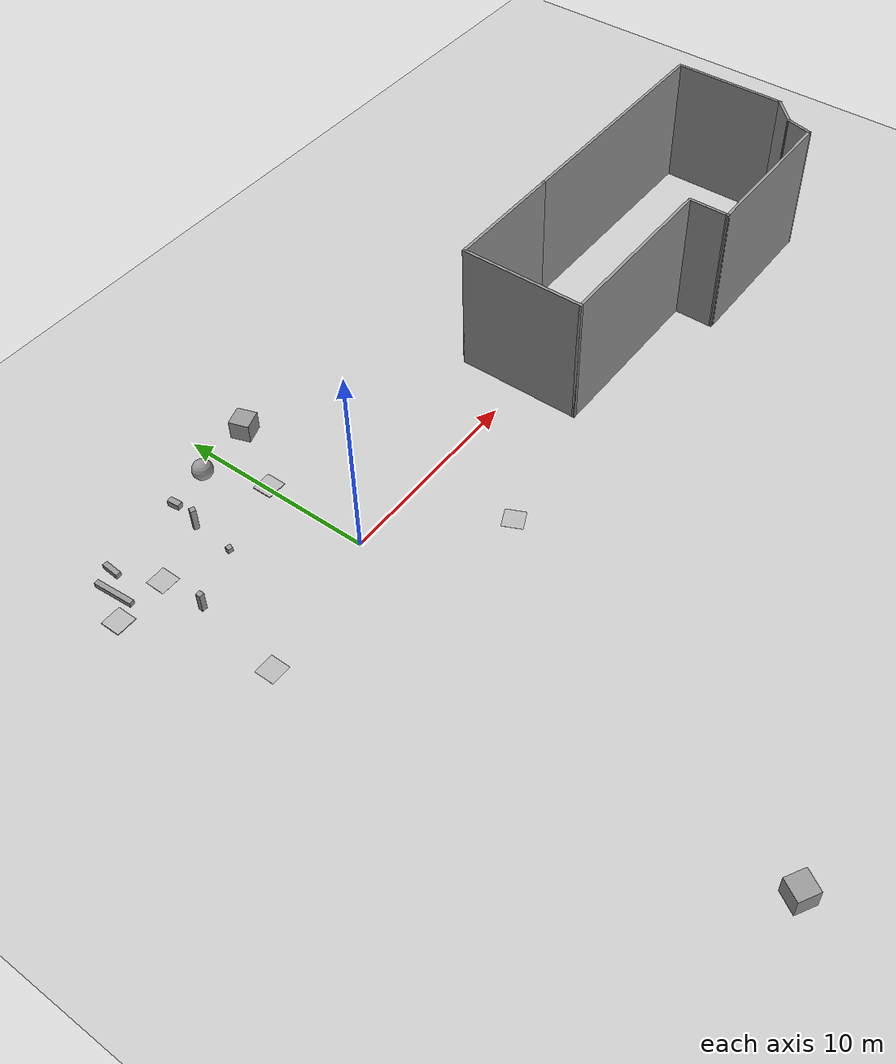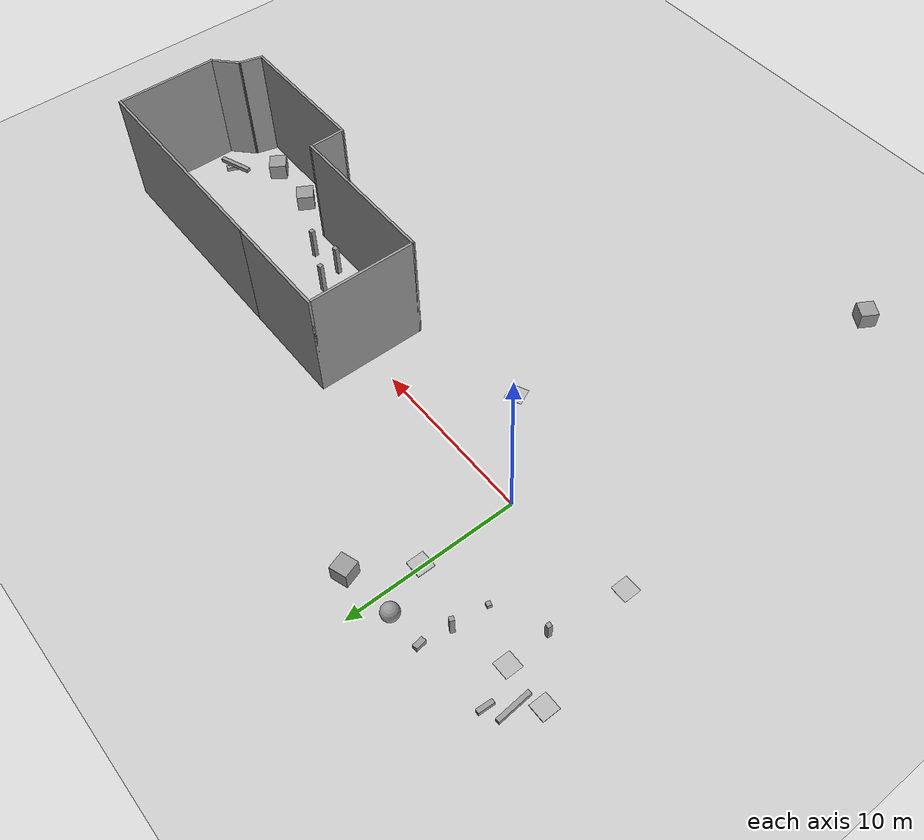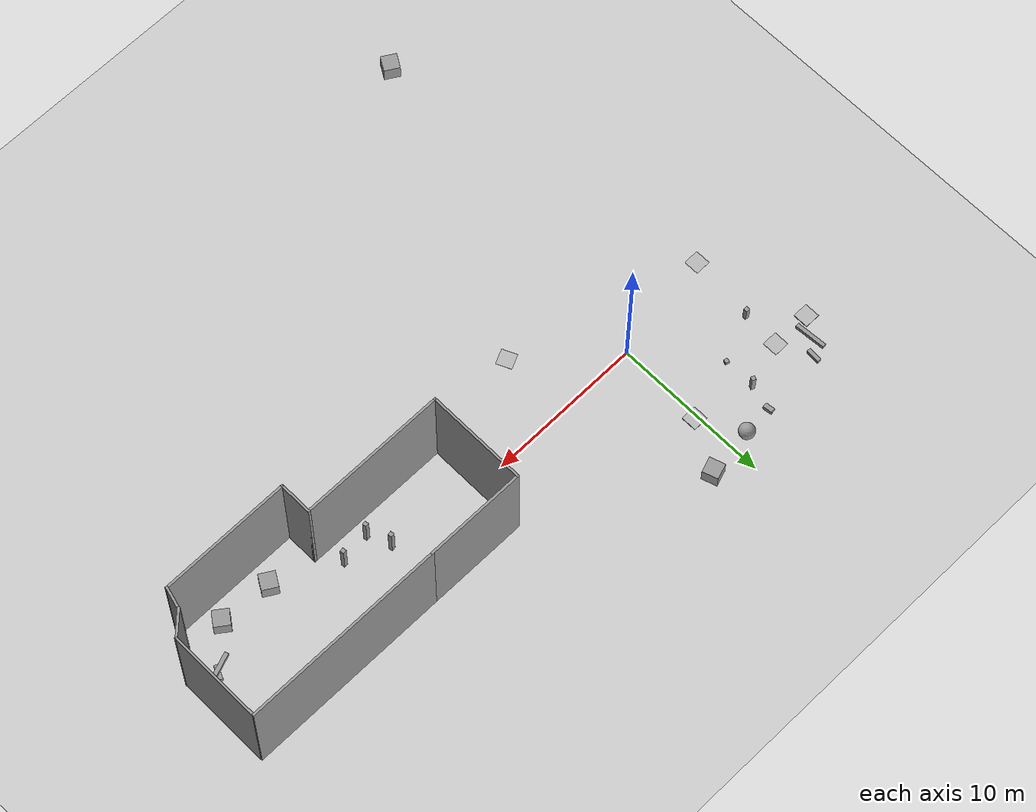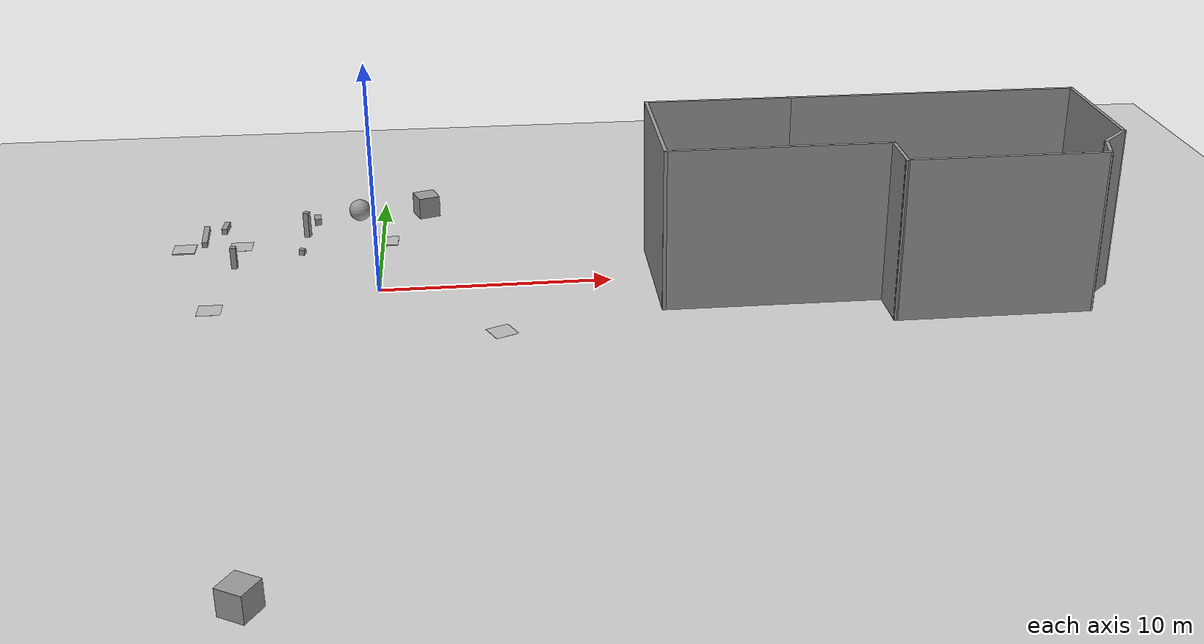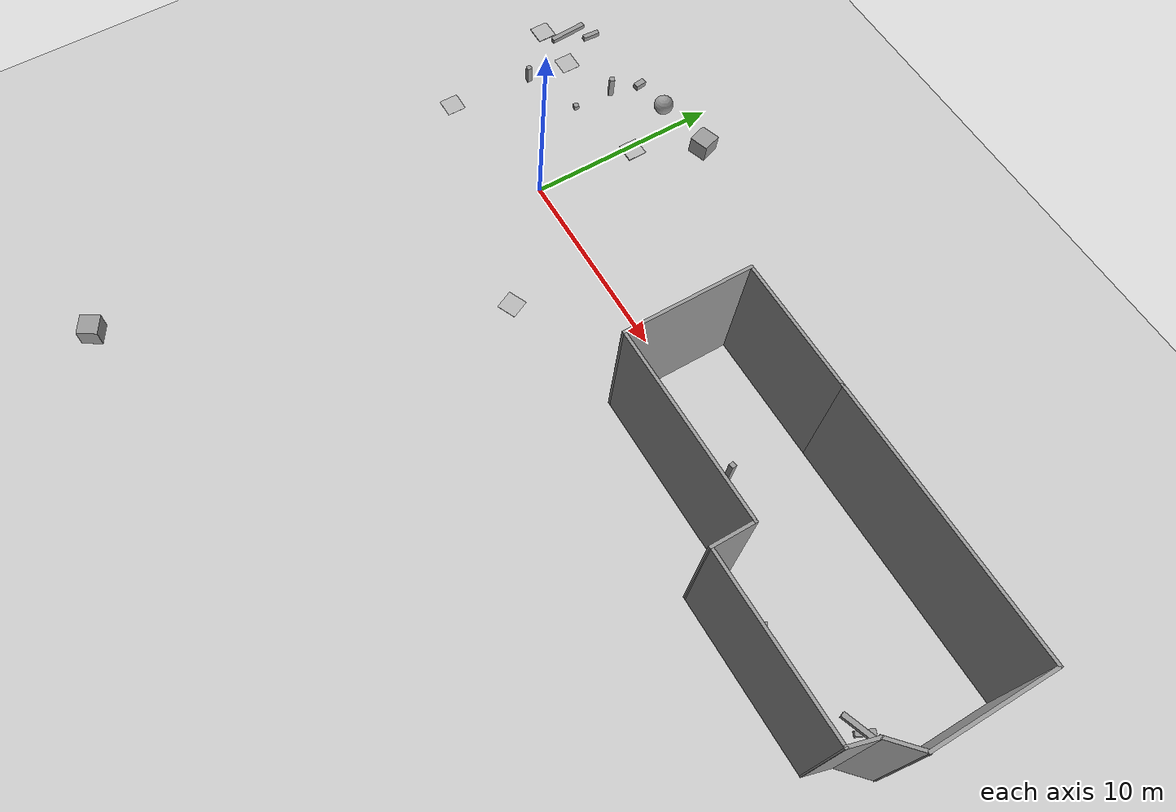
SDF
<sdf version="1.7">
 <world name="default">
  <light name="sun" type="directional">
   <pose>0 0 10 0 -0 0</pose>
   <diffuse>0.8 0.8 0.8 1</diffuse>
   <specular>0.2 0.2 0.2 1</specular>
   <attenuation>
    <range>1000</range>
    <constant>0.9</constant>
    <linear>0.01</linear>
    <quadratic>0.001</quadratic>
   </attenuation>
   <direction>-0.5 0.1 -0.9</direction>
   <spot><inner_angle>0</inner_angle><outer_angle>0</outer_angle><falloff>0</falloff></spot>
  </light>
  <model name="ground_plane">
   <static>1</static>
   <link name="link">
    <collision name="collision">
     <geometry><plane><normal>0 0 1</normal><size>100 100</size></plane></geometry>
     <surface><friction><ode><mu>100</mu><mu2>50</mu2></ode></friction></surface>
    </collision>
    <visual name="visual">
     <cast_shadows>0</cast_shadows>
     <geometry><plane><normal>0 0 1</normal><size>100 100</size></plane></geometry>
     <material>
      <script><uri>file://media/materials/scripts/gazebo.material</uri><name>Gazebo/Grey</name></script>
     </material>
    </visual>
   </link>
  </model>
  <gravity>0 0 -9.8</gravity>
  <magnetic_field>6e-06 2.3e-05 -4.2e-05</magnetic_field>
  <atmosphere type="adiabatic"/>
  <physics name="default_physics" default="0" type="ode">
   <max_step_size>0.001</max_step_size>
   <real_time_factor>1</real_time_factor>
   <real_time_update_rate>1000</real_time_update_rate>
  </physics>
  <scene><ambient>0.4 0.4 0.4 1</ambient><background>0.7 0.7 0.7 1</background><shadows>1</shadows></scene>
  <spherical_coordinates>
   <surface_model>EARTH_WGS84</surface_model>
   <latitude_deg>0</latitude_deg>
   <longitude_deg>0</longitude_deg>
   <elevation>0</elevation>
   <heading_deg>0</heading_deg>
  </spherical_coordinates>
  <model name="h_1">
   <link name="link">
    <pose>0 0 0.115 0 -0 0</pose>
    <inertial>
     <mass>1000</mass>
     <inertia><ixx>1000</ixx><ixy>0</ixy><ixz>0</ixz><iyy>1000</iyy><iyz>0</iyz><izz>1000</izz></inertia>
    </inertial>
    <collision name="collision">
     <geometry><box><size>0.496 0.496 0.01</size></box></geometry>
     <surface>
      <contact>
       <poissons_ratio>0.347</poissons_ratio>
       <elastic_modulus>8.8e+09</elastic_modulus>
       <ode><kp>100000</kp><kd>100</kd><max_vel>100</max_vel><min_depth>0.001</min_depth></ode>
      </contact>
      <friction>
       <torsional>
        <coefficient>1</coefficient>
        <use_patch_radius>0</use_patch_radius>
        <surface_radius>0.01</surface_radius>
       </torsional>
      </friction>
     </surface>
    </collision>
    <visual name="visual">
     <geometry><box><size>1 1 0.05</size></box></geometry>
     <material>
      <script>
       <uri>model://H/materials/scripts</uri>
       <uri>model://H/materials/textures</uri>
       <name>Mark/Diffuse2</name>
      </script>
     </material>
    </visual>
   </link>
   <pose>-8.95845 5.4829 -0.135259 0 -0 0</pose>
  </model>
  <model name="h_1_clone">
   <link name="link">
    <pose>0 0 0.115 0 -0 0</pose>
    <inertial>
     <mass>1000</mass>
     <inertia><ixx>1000</ixx><ixy>0</ixy><ixz>0</ixz><iyy>1000</iyy><iyz>0</iyz><izz>1000</izz></inertia>
    </inertial>
    <collision name="collision">
     <geometry><box><size>0.496 0.496 0.01</size></box></geometry>
     <surface>
      <contact>
       <poissons_ratio>0.347</poissons_ratio>
       <elastic_modulus>8.8e+09</elastic_modulus>
       <ode><kp>100000</kp><kd>100</kd><max_vel>100</max_vel><min_depth>0.001</min_depth></ode>
      </contact>
      <friction>
       <torsional>
        <coefficient>1</coefficient>
        <use_patch_radius>0</use_patch_radius>
        <surface_radius>0.01</surface_radius>
       </torsional>
      </friction>
     </surface>
    </collision>
    <visual name="visual">
     <geometry><box><size>1 1 0.05</size></box></geometry>
     <material>
      <script>
       <uri>model://H/materials/scripts</uri>
       <uri>model://H/materials/textures</uri>
       <name>Mark/Diffuse2</name>
      </script>
     </material>
    </visual>
   </link>
   <pose>0.183791 5.48947 -0.135259 0 -0 0.001493</pose>
  </model>
  <model name="zhuangjiache_0">
   <link name="link">
    <pose>0 0 0.115 0 -0 0</pose>
    <inertial>
     <mass>3.39</mass>
     <inertia><ixx>0.58</ixx><ixy>0</ixy><ixz>0</ixz><iyy>0.58</iyy><iyz>0</iyz><izz>0.19</izz></inertia>
    </inertial>
    <collision name="collision"><geometry><box><size>0.496 0.496 0.01</size></box></geometry></collision>
    <visual name="visual">
     <geometry><box><size>1 1 0.005</size></box></geometry>
     <material>
      <script>
       <uri>model://zhuangjiache/materials/scripts</uri>
       <uri>model://zhuangjiache/materials/textures</uri>
       <name>Mark/Diffuse6</name>
      </script>
     </material>
    </visual>
   </link>
   <pose>-6.97129 -1.24026 -0.11 0 -0 0.00193</pose>
  </model>
  <model name="zhangpeng_0">
   <link name="link">
    <pose>0 0 0.115 0 -0 0</pose>
    <inertial>
     <mass>3.39</mass>
     <inertia><ixx>0.58</ixx><ixy>0</ixy><ixz>0</ixz><iyy>0.58</iyy><iyz>0</iyz><izz>0.19</izz></inertia>
    </inertial>
    <collision name="collision"><geometry><box><size>0.496 0.496 0.005</size></box></geometry></collision>
    <visual name="visual">
     <geometry><box><size>1 1 0.005</size></box></geometry>
     <material>
      <script>
       <uri>model://zhangpeng/materials/scripts</uri>
       <uri>model://zhangpeng/materials/textures</uri>
       <name>Mark/Diffuse5</name>
      </script>
     </material>
    </visual>
   </link>
   <pose>5.10524 -4.53401 0.1175 3.14159 0 -1.1365</pose>
  </model>
  <model name="tanke_0">
   <link name="link">
    <pose>0 0 0.115 0 -0 0</pose>
    <inertial>
     <mass>3.39</mass>
     <inertia><ixx>0.58</ixx><ixy>0</ixy><ixz>0</ixz><iyy>0.58</iyy><iyz>0</iyz><izz>0.19</izz></inertia>
    </inertial>
    <collision name="collision"><geometry><box><size>0.496 0.496 0.005</size></box></geometry></collision>
    <visual name="visual">
     <geometry><box><size>1 1 0.005</size></box></geometry>
     <material>
      <script>
       <uri>model://tanke/materials/scripts</uri>
       <uri>model://tanke/materials/textures</uri>
       <name>Mark/Diffuse4</name>
      </script>
     </material>
    </visual>
   </link>
   <pose>-6.41052 5.49151 -0.1125 0 -0 -0.000981</pose>
  </model>
  <model name="unit_box_1">
   <link name="link">
    <inertial>
     <mass>1</mass>
     <inertia>
      <ixx>0.166667</ixx>
      <ixy>0</ixy>
      <ixz>0</ixz>
      <iyy>0.166667</iyy>
      <iyz>0</iyz>
      <izz>0.166667</izz>
     </inertia>
    </inertial>
    <pose>0.033703 0.185129 -0 0 -0 0</pose>
    <visual name="visual">
     <geometry><box><size>0.25 0.25 1</size></box></geometry>
     <material>
      <lighting>1</lighting>
      <script><uri>file://media/materials/scripts/gazebo.material</uri><name>Gazebo/Grey</name></script>
      <shader type="pixel"><normal_map>__default__</normal_map></shader>
      <ambient>0.3 0.3 0.3 1</ambient>
      <diffuse>0.7 0.7 0.7 1</diffuse>
      <specular>0.01 0.01 0.01 1</specular>
      <emissive>0 0 0 1</emissive>
     </material>
    </visual>
    <collision name="collision">
     <geometry><box><size>0.25 0.25 1</size></box></geometry>
     <surface>
      <friction>
       <ode><mu>1</mu><mu2>1</mu2><fdir1>0 0 0</fdir1><slip1>0</slip1><slip2>0</slip2></ode>
       <torsional>
        <coefficient>1</coefficient>
        <patch_radius>0</patch_radius>
        <surface_radius>0</surface_radius>
        <use_patch_radius>1</use_patch_radius>
        <ode><slip>0</slip></ode>
       </torsional>
      </friction>
      <bounce><restitution_coefficient>0</restitution_coefficient><threshold>1e+06</threshold></bounce>
      <contact>
       <collide_without_contact>0</collide_without_contact>
       <collide_without_contact_bitmask>1</collide_without_contact_bitmask>
       <collide_bitmask>1</collide_bitmask>
       <ode>
        <soft_cfm>0</soft_cfm>
        <soft_erp>0.2</soft_erp>
        <kp>1e+13</kp>
        <kd>1</kd>
        <max_vel>0.01</max_vel>
        <min_depth>0</min_depth>
       </ode>
       <bullet>
        <split_impulse>1</split_impulse>
        <split_impulse_penetration_threshold>-0.01</split_impulse_penetration_threshold>
        <soft_cfm>0</soft_cfm>
        <soft_erp>0.2</soft_erp>
        <kp>1e+13</kp>
        <kd>1</kd>
       </bullet>
      </contact>
     </surface>
    </collision>
   </link>
   <static>0</static>
   <pose>-6.48227 2.93704 0.499999 1e-06 -2e-06 -0.065841</pose>
  </model>
  <model name="unit_box_0.6">
   <link name="link">
    <inertial>
     <mass>1</mass>
     <inertia>
      <ixx>0.166667</ixx>
      <ixy>0</ixy>
      <ixz>0</ixz>
      <iyy>0.166667</iyy>
      <iyz>0</iyz>
      <izz>0.166667</izz>
     </inertia>
    </inertial>
    <pose>0.033703 0.185129 -0 0 -0 0</pose>
    <visual name="visual">
     <geometry><box><size>0.3 0.3 0.6</size></box></geometry>
     <material>
      <lighting>1</lighting>
      <script><uri>file://media/materials/scripts/gazebo.material</uri><name>Gazebo/Grey</name></script>
      <shader type="pixel"><normal_map>__default__</normal_map></shader>
      <ambient>0.3 0.3 0.3 1</ambient>
      <diffuse>0.7 0.7 0.7 1</diffuse>
      <specular>0.01 0.01 0.01 1</specular>
      <emissive>0 0 0 1</emissive>
     </material>
    </visual>
    <collision name="collision">
     <geometry><box><size>0.3 0.3 0.6</size></box></geometry>
     <surface>
      <friction>
       <ode><mu>1</mu><mu2>1</mu2><fdir1>0 0 0</fdir1><slip1>0</slip1><slip2>0</slip2></ode>
       <torsional>
        <coefficient>1</coefficient>
        <patch_radius>0</patch_radius>
        <surface_radius>0</surface_radius>
        <use_patch_radius>1</use_patch_radius>
        <ode><slip>0</slip></ode>
       </torsional>
      </friction>
      <bounce><restitution_coefficient>0</restitution_coefficient><threshold>1e+06</threshold></bounce>
      <contact>
       <collide_without_contact>0</collide_without_contact>
       <collide_without_contact_bitmask>1</collide_without_contact_bitmask>
       <collide_bitmask>1</collide_bitmask>
       <ode>
        <soft_cfm>0</soft_cfm>
        <soft_erp>0.2</soft_erp>
        <kp>1e+13</kp>
        <kd>1</kd>
        <max_vel>0.01</max_vel>
        <min_depth>0</min_depth>
       </ode>
       <bullet>
        <split_impulse>1</split_impulse>
        <split_impulse_penetration_threshold>-0.01</split_impulse_penetration_threshold>
        <soft_cfm>0</soft_cfm>
        <soft_erp>0.2</soft_erp>
        <kp>1e+13</kp>
        <kd>1</kd>
       </bullet>
      </contact>
     </surface>
    </collision>
   </link>
   <static>0</static>
   <pose>-3.32438 8.01434 0.183703 -1.6882 1.57079 3.14159</pose>
  </model>
  <model name="unit_box_0.25">
   <link name="link">
    <inertial>
     <mass>1</mass>
     <inertia>
      <ixx>0.166667</ixx>
      <ixy>0</ixy>
      <ixz>0</ixz>
      <iyy>0.166667</iyy>
      <iyz>0</iyz>
      <izz>0.166667</izz>
     </inertia>
    </inertial>
    <pose>0.033703 0.185129 -0 0 -0 0</pose>
    <visual name="visual">
     <geometry><box><size>0.25 0.25 0.25</size></box></geometry>
     <material>
      <lighting>1</lighting>
      <script><uri>file://media/materials/scripts/gazebo.material</uri><name>Gazebo/Grey</name></script>
      <shader type="pixel"><normal_map>__default__</normal_map></shader>
      <ambient>0.3 0.3 0.3 1</ambient>
      <diffuse>0.7 0.7 0.7 1</diffuse>
      <specular>0.01 0.01 0.01 1</specular>
      <emissive>0 0 0 1</emissive>
     </material>
    </visual>
    <collision name="collision">
     <geometry><box><size>0.25 0.25 0.25</size></box></geometry>
     <surface>
      <friction>
       <ode><mu>1</mu><mu2>1</mu2><fdir1>0 0 0</fdir1><slip1>0</slip1><slip2>0</slip2></ode>
       <torsional>
        <coefficient>1</coefficient>
        <patch_radius>0</patch_radius>
        <surface_radius>0</surface_radius>
        <use_patch_radius>1</use_patch_radius>
        <ode><slip>0</slip></ode>
       </torsional>
      </friction>
      <bounce><restitution_coefficient>0</restitution_coefficient><threshold>1e+06</threshold></bounce>
      <contact>
       <collide_without_contact>0</collide_without_contact>
       <collide_without_contact_bitmask>1</collide_without_contact_bitmask>
       <collide_bitmask>1</collide_bitmask>
       <ode>
        <soft_cfm>0</soft_cfm>
        <soft_erp>0.2</soft_erp>
        <kp>1e+13</kp>
        <kd>1</kd>
        <max_vel>0.01</max_vel>
        <min_depth>0</min_depth>
       </ode>
       <bullet>
        <split_impulse>1</split_impulse>
        <split_impulse_penetration_threshold>-0.01</split_impulse_penetration_threshold>
        <soft_cfm>0</soft_cfm>
        <soft_erp>0.2</soft_erp>
        <kp>1e+13</kp>
        <kd>1</kd>
       </bullet>
      </contact>
     </surface>
    </collision>
   </link>
   <static>0</static>
   <pose>-3.65186 4.16416 0.125 0 0 -0.235881</pose>
  </model>
  <model name="unit_box_2">
   <link name="link">
    <inertial>
     <mass>1</mass>
     <inertia>
      <ixx>0.166667</ixx>
      <ixy>0</ixy>
      <ixz>0</ixz>
      <iyy>0.166667</iyy>
      <iyz>0</iyz>
      <izz>0.166667</izz>
     </inertia>
    </inertial>
    <pose>0.033703 0.185129 -0 0 -0 0</pose>
    <visual name="visual">
     <geometry><box><size>0.25 0.25 2</size></box></geometry>
     <material>
      <lighting>1</lighting>
      <script><uri>file://media/materials/scripts/gazebo.material</uri><name>Gazebo/Grey</name></script>
      <shader type="pixel"><normal_map>__default__</normal_map></shader>
      <ambient>0.3 0.3 0.3 1</ambient>
      <diffuse>0.7 0.7 0.7 1</diffuse>
      <specular>0.01 0.01 0.01 1</specular>
      <emissive>0 0 0 1</emissive>
     </material>
    </visual>
    <collision name="collision">
     <geometry><box><size>0.25 0.25 2</size></box></geometry>
     <surface>
      <friction>
       <ode><mu>1</mu><mu2>1</mu2><fdir1>0 0 0</fdir1><slip1>0</slip1><slip2>0</slip2></ode>
       <torsional>
        <coefficient>1</coefficient>
        <patch_radius>0</patch_radius>
        <surface_radius>0</surface_radius>
        <use_patch_radius>1</use_patch_radius>
        <ode><slip>0</slip></ode>
       </torsional>
      </friction>
      <bounce><restitution_coefficient>0</restitution_coefficient><threshold>1e+06</threshold></bounce>
      <contact>
       <collide_without_contact>0</collide_without_contact>
       <collide_without_contact_bitmask>1</collide_without_contact_bitmask>
       <collide_bitmask>1</collide_bitmask>
       <ode>
        <soft_cfm>0</soft_cfm>
        <soft_erp>0.2</soft_erp>
        <kp>1e+13</kp>
        <kd>1</kd>
        <max_vel>0.01</max_vel>
        <min_depth>0</min_depth>
       </ode>
       <bullet>
        <split_impulse>1</split_impulse>
        <split_impulse_penetration_threshold>-0.01</split_impulse_penetration_threshold>
        <soft_cfm>0</soft_cfm>
        <soft_erp>0.2</soft_erp>
        <kp>1e+13</kp>
        <kd>1</kd>
       </bullet>
      </contact>
     </surface>
    </collision>
   </link>
   <static>0</static>
   <pose>-7.9508 6.58425 0.158643 3.1387 1.57074 -1.50507</pose>
  </model>
  <model name="unit_box_0.9">
   <link name="link">
    <inertial>
     <mass>1</mass>
     <inertia>
      <ixx>0.166667</ixx>
      <ixy>0</ixy>
      <ixz>0</ixz>
      <iyy>0.166667</iyy>
      <iyz>0</iyz>
      <izz>0.166667</izz>
     </inertia>
    </inertial>
    <pose>0.033703 0.185129 -0 0 -0 0</pose>
    <visual name="visual">
     <geometry><box><size>0.25 0.25 0.9</size></box></geometry>
     <material>
      <lighting>1</lighting>
      <script><uri>file://media/materials/scripts/gazebo.material</uri><name>Gazebo/Grey</name></script>
      <shader type="pixel"><normal_map>__default__</normal_map></shader>
      <ambient>0.3 0.3 0.3 1</ambient>
      <diffuse>0.7 0.7 0.7 1</diffuse>
      <specular>0.01 0.01 0.01 1</specular>
      <emissive>0 0 0 1</emissive>
     </material>
    </visual>
    <collision name="collision">
     <geometry><box><size>0.25 0.25 0.9</size></box></geometry>
     <surface>
      <friction>
       <ode><mu>1</mu><mu2>1</mu2><fdir1>0 0 0</fdir1><slip1>0</slip1><slip2>0</slip2></ode>
       <torsional>
        <coefficient>1</coefficient>
        <patch_radius>0</patch_radius>
        <surface_radius>0</surface_radius>
        <use_patch_radius>1</use_patch_radius>
        <ode><slip>0</slip></ode>
       </torsional>
      </friction>
      <bounce><restitution_coefficient>0</restitution_coefficient><threshold>1e+06</threshold></bounce>
      <contact>
       <collide_without_contact>0</collide_without_contact>
       <collide_without_contact_bitmask>1</collide_without_contact_bitmask>
       <collide_bitmask>1</collide_bitmask>
       <ode>
        <soft_cfm>0</soft_cfm>
        <soft_erp>0.2</soft_erp>
        <kp>1e+13</kp>
        <kd>1</kd>
        <max_vel>0.01</max_vel>
        <min_depth>0</min_depth>
       </ode>
       <bullet>
        <split_impulse>1</split_impulse>
        <split_impulse_penetration_threshold>-0.01</split_impulse_penetration_threshold>
        <soft_cfm>0</soft_cfm>
        <soft_erp>0.2</soft_erp>
        <kp>1e+13</kp>
        <kd>1</kd>
       </bullet>
      </contact>
     </surface>
    </collision>
   </link>
   <static>0</static>
   <pose>-7.38119 7.56237 0.310129 -1.5708 -0 -0.065155</pose>
  </model>
  <model name="unit_box_1.2">
   <link name="link">
    <inertial>
     <mass>1</mass>
     <inertia>
      <ixx>0.166667</ixx>
      <ixy>0</ixy>
      <ixz>0</ixz>
      <iyy>0.166667</iyy>
      <iyz>0</iyz>
      <izz>0.166667</izz>
     </inertia>
    </inertial>
    <pose>0.033703 0.185129 -0 0 -0 0</pose>
    <visual name="visual">
     <geometry><box><size>0.25 0.25 1.2</size></box></geometry>
     <material>
      <lighting>1</lighting>
      <script><uri>file://media/materials/scripts/gazebo.material</uri><name>Gazebo/Grey</name></script>
      <shader type="pixel"><normal_map>__default__</normal_map></shader>
      <ambient>0.3 0.3 0.3 1</ambient>
      <diffuse>0.7 0.7 0.7 1</diffuse>
      <specular>0.01 0.01 0.01 1</specular>
      <emissive>0 0 0 1</emissive>
     </material>
    </visual>
    <collision name="collision">
     <geometry><box><size>0.25 0.25 1.2</size></box></geometry>
     <surface>
      <friction>
       <ode><mu>1</mu><mu2>1</mu2><fdir1>0 0 0</fdir1><slip1>0</slip1><slip2>0</slip2></ode>
       <torsional>
        <coefficient>1</coefficient>
        <patch_radius>0</patch_radius>
        <surface_radius>0</surface_radius>
        <use_patch_radius>1</use_patch_radius>
        <ode><slip>0</slip></ode>
       </torsional>
      </friction>
      <bounce><restitution_coefficient>0</restitution_coefficient><threshold>1e+06</threshold></bounce>
      <contact>
       <collide_without_contact>0</collide_without_contact>
       <collide_without_contact_bitmask>1</collide_without_contact_bitmask>
       <collide_bitmask>1</collide_bitmask>
       <ode>
        <soft_cfm>0</soft_cfm>
        <soft_erp>0.2</soft_erp>
        <kp>1e+13</kp>
        <kd>1</kd>
        <max_vel>0.01</max_vel>
        <min_depth>0</min_depth>
       </ode>
       <bullet>
        <split_impulse>1</split_impulse>
        <split_impulse_penetration_threshold>-0.01</split_impulse_penetration_threshold>
        <soft_cfm>0</soft_cfm>
        <soft_erp>0.2</soft_erp>
        <kp>1e+13</kp>
        <kd>1</kd>
       </bullet>
      </contact>
     </surface>
    </collision>
   </link>
   <static>0</static>
   <pose>-3.58849 6.26604 0.600001 -2e-06 -0 -0.403979</pose>
  </model>
  <model name="unit_box">
   <pose>1.97023 8.61454 0.5 0 -0 0.323535</pose>
   <link name="link">
    <inertial>
     <mass>1</mass>
     <inertia>
      <ixx>0.166667</ixx>
      <ixy>0</ixy>
      <ixz>0</ixz>
      <iyy>0.166667</iyy>
      <iyz>0</iyz>
      <izz>0.166667</izz>
     </inertia>
    </inertial>
    <collision name="collision"><geometry><box><size>1 1 1</size></box></geometry></collision>
    <visual name="visual">
     <geometry><box><size>1 1 1</size></box></geometry>
     <material>
      <script><name>Gazebo/Grey</name><uri>file://media/materials/scripts/gazebo.material</uri></script>
     </material>
    </visual>
   </link>
  </model>
  <model name="unit_sphere">
   <pose>-1.15301 8.22042 0.5 -0.009023 -0.033424 0.000236</pose>
   <link name="link">
    <inertial>
     <mass>1</mass>
     <inertia><ixx>0.1</ixx><ixy>0</ixy><ixz>0</ixz><iyy>0.1</iyy><iyz>0</iyz><izz>0.1</izz></inertia>
    </inertial>
    <collision name="collision"><geometry><sphere><radius>0.5</radius></sphere></geometry></collision>
    <visual name="visual">
     <geometry><sphere><radius>0.5</radius></sphere></geometry>
     <material>
      <script><name>Gazebo/Grey</name><uri>file://media/materials/scripts/gazebo.material</uri></script>
     </material>
    </visual>
   </link>
  </model>
  <light name="user_point_light_0" type="point">
   <pose>-7.02428 -0.880974 1 0 -0 0</pose>
   <diffuse>0.5 0.5 0.5 1</diffuse>
   <specular>0.1 0.1 0.1 1</specular>
   <attenuation>
    <range>20</range>
    <constant>0.5</constant>
    <linear>0.01</linear>
    <quadratic>0.001</quadratic>
   </attenuation>
   <cast_shadows>0</cast_shadows>
   <direction>0 0 -1</direction>
   <spot><inner_angle>0</inner_angle><outer_angle>0</outer_angle><falloff>0</falloff></spot>
  </light>
  <model name="unit_box_0">
   <pose>-3.18092 -22.6426 0.699994 1.5708 -6e-06 -0.539544</pose>
   <link name="link">
    <inertial>
     <mass>1</mass>
     <inertia>
      <ixx>0.166667</ixx>
      <ixy>0</ixy>
      <ixz>0</ixz>
      <iyy>0.166667</iyy>
      <iyz>0</iyz>
      <izz>0.166667</izz>
     </inertia>
    </inertial>
    <collision name="collision"><geometry><box><size>1 1 1</size></box></geometry></collision>
    <visual name="visual">
     <geometry><box><size>1 1 1</size></box></geometry>
     <material>
      <script><name>Gazebo/Grey</name><uri>file://media/materials/scripts/gazebo.material</uri></script>
     </material>
    </visual>
   </link>
  </model>
  <model name="Untitled2">
   <pose>20.9763 -1.03769 0 0 -0 1.57</pose>
   <link name="Wall_0">
    <collision name="Wall_0_Collision">
     <geometry><box><size>9.5 0.15 7</size></box></geometry>
     <pose>0 0 3.5 0 -0 0</pose>
    </collision>
    <visual name="Wall_0_Visual">
     <pose>0 0 3.5 0 -0 0</pose>
     <geometry><box><size>9.5 0.15 7</size></box></geometry>
     <material>
      <script><uri>file://media/materials/scripts/gazebo.material</uri><name>Gazebo/Grey</name></script>
      <ambient>1 1 1 1</ambient>
     </material>
     <meta><layer>0</layer></meta>
    </visual>
    <pose>-2.14508 4.41652 0 0 -0 -1.5708</pose>
   </link>
   <link name="Wall_10">
    <collision name="Wall_10_Collision">
     <geometry><box><size>1.49989 0.15 7</size></box></geometry>
     <pose>0 0 3.5 0 -0 0</pose>
    </collision>
    <visual name="Wall_10_Visual">
     <pose>0 0 3.5 0 -0 0</pose>
     <geometry><box><size>1.49989 0.15 7</size></box></geometry>
     <material>
      <script><uri>file://media/materials/scripts/gazebo.material</uri><name>Gazebo/Grey</name></script>
      <ambient>1 1 1 1</ambient>
     </material>
     <meta><layer>0</layer></meta>
    </visual>
    <pose>-3.53608 -8.73598 0 0 -0 -0.261509</pose>
   </link>
   <link name="Wall_11">
    <collision name="Wall_11_Collision">
     <geometry><box><size>1.82845 0.15 7</size></box></geometry>
     <pose>0 0 3.5 0 -0 0</pose>
    </collision>
    <visual name="Wall_11_Visual">
     <pose>0 0 3.5 0 -0 0</pose>
     <geometry><box><size>1.82845 0.15 7</size></box></geometry>
     <material>
      <script><uri>file://media/materials/scripts/gazebo.material</uri><name>Gazebo/Grey</name></script>
      <ambient>1 1 1 1</ambient>
     </material>
     <meta><layer>0</layer></meta>
    </visual>
    <pose>-2.30508 -9.51798 0 0 -0 -0.809414</pose>
   </link>
   <link name="Wall_12">
    <collision name="Wall_12_Collision">
     <geometry><box><size>5.99999 0.15 7</size></box></geometry>
     <pose>0 0 3.5 0 -0 0</pose>
    </collision>
    <visual name="Wall_12_Visual">
     <pose>0 0 3.5 0 -0 0</pose>
     <geometry><box><size>5.99999 0.15 7</size></box></geometry>
     <material>
      <script><uri>file://media/materials/scripts/gazebo.material</uri><name>Gazebo/Grey</name></script>
      <ambient>1 1 1 1</ambient>
     </material>
     <meta><layer>0</layer></meta>
    </visual>
    <pose>1.19892 -10.1255 0 0 -0 0</pose>
   </link>
   <link name="Wall_14">
    <collision name="Wall_14_Collision">
     <geometry><box><size>13 0.15 7</size></box></geometry>
     <pose>0 0 3.5 0 -0 0</pose>
    </collision>
    <visual name="Wall_14_Visual">
     <pose>0 0 3.5 0 -0 0</pose>
     <geometry><box><size>13 0.15 7</size></box></geometry>
     <material>
      <script><uri>file://media/materials/scripts/gazebo.material</uri><name>Gazebo/Grey</name></script>
      <ambient>1 1 1 1</ambient>
     </material>
     <meta><layer>0</layer></meta>
    </visual>
    <pose>4.20492 -3.68348 0 0 -0 -1.5708</pose>
   </link>
   <link name="Wall_2">
    <collision name="Wall_2_Collision">
     <geometry><box><size>6.5 0.15 7</size></box></geometry>
     <pose>0 0 3.5 0 -0 0</pose>
    </collision>
    <visual name="Wall_2_Visual">
     <pose>0 0 3.5 0 -0 0</pose>
     <geometry><box><size>6.5 0.15 7</size></box></geometry>
     <material>
      <script><uri>file://media/materials/scripts/gazebo.material</uri><name>Gazebo/Grey</name></script>
      <ambient>1 1 1 1</ambient>
     </material>
     <meta><layer>0</layer></meta>
    </visual>
    <pose>1.02992 9.09152 0 0 -0 0</pose>
   </link>
   <link name="Wall_4">
    <collision name="Wall_4_Collision">
     <geometry><box><size>6.5 0.15 7</size></box></geometry>
     <pose>0 0 3.5 0 -0 0</pose>
    </collision>
    <visual name="Wall_4_Visual">
     <pose>0 0 3.5 0 -0 0</pose>
     <geometry><box><size>6.5 0.15 7</size></box></geometry>
     <material>
      <script><uri>file://media/materials/scripts/gazebo.material</uri><name>Gazebo/Grey</name></script>
      <ambient>1 1 1 1</ambient>
     </material>
     <meta><layer>0</layer></meta>
    </visual>
    <pose>4.20492 5.91652 0 0 -0 -1.5708</pose>
   </link>
   <link name="Wall_6">
    <collision name="Wall_6_Collision">
     <geometry><box><size>2.2 0.15 7</size></box></geometry>
     <pose>0 0 3.5 0 -0 0</pose>
    </collision>
    <visual name="Wall_6_Visual">
     <pose>0 0 3.5 0 -0 0</pose>
     <geometry><box><size>2.2 0.15 7</size></box></geometry>
     <material>
      <script><uri>file://media/materials/scripts/gazebo.material</uri><name>Gazebo/Grey</name></script>
      <ambient>1 1 1 1</ambient>
     </material>
     <meta><layer>0</layer></meta>
    </visual>
    <pose>-3.17008 -0.258482 0 0 -0 3.14159</pose>
   </link>
   <link name="Wall_8">
    <collision name="Wall_8_Collision">
     <geometry><box><size>8.453 0.15 7</size></box></geometry>
     <pose>0 0 3.5 0 -0 0</pose>
    </collision>
    <visual name="Wall_8_Visual">
     <pose>0 0 3.5 0 -0 0</pose>
     <geometry><box><size>8.453 0.15 7</size></box></geometry>
     <material>
      <script><uri>file://media/materials/scripts/gazebo.material</uri><name>Gazebo/Grey</name></script>
      <ambient>1 1 1 1</ambient>
     </material>
     <meta><layer>0</layer></meta>
    </visual>
    <pose>-4.19158 -4.40998 0 0 -0 -1.56995</pose>
   </link>
   <static>1</static>
  </model>
  <model name="unit_box_2_clone">
   <link name="link">
    <inertial>
     <mass>1</mass>
     <inertia>
      <ixx>0.166667</ixx>
      <ixy>0</ixy>
      <ixz>0</ixz>
      <iyy>0.166667</iyy>
      <iyz>0</iyz>
      <izz>0.166667</izz>
     </inertia>
    </inertial>
    <pose>0.033703 0.185129 -0 0 -0 0</pose>
    <visual name="visual">
     <geometry><box><size>0.25 0.25 2</size></box></geometry>
     <material>
      <lighting>1</lighting>
      <script><uri>file://media/materials/scripts/gazebo.material</uri><name>Gazebo/Grey</name></script>
      <shader type="pixel"><normal_map>__default__</normal_map></shader>
      <ambient>0.3 0.3 0.3 1</ambient>
      <diffuse>0.7 0.7 0.7 1</diffuse>
      <specular>0.01 0.01 0.01 1</specular>
      <emissive>0 0 0 1</emissive>
     </material>
    </visual>
    <collision name="collision">
     <geometry><box><size>0.25 0.25 2</size></box></geometry>
     <surface>
      <friction>
       <ode><mu>1</mu><mu2>1</mu2><fdir1>0 0 0</fdir1><slip1>0</slip1><slip2>0</slip2></ode>
       <torsional>
        <coefficient>1</coefficient>
        <patch_radius>0</patch_radius>
        <surface_radius>0</surface_radius>
        <use_patch_radius>1</use_patch_radius>
        <ode><slip>0</slip></ode>
       </torsional>
      </friction>
      <bounce><restitution_coefficient>0</restitution_coefficient><threshold>1e+06</threshold></bounce>
      <contact>
       <collide_without_contact>0</collide_without_contact>
       <collide_without_contact_bitmask>1</collide_without_contact_bitmask>
       <collide_bitmask>1</collide_bitmask>
       <ode>
        <soft_cfm>0</soft_cfm>
        <soft_erp>0.2</soft_erp>
        <kp>1e+13</kp>
        <kd>1</kd>
        <max_vel>0.01</max_vel>
        <min_depth>0</min_depth>
       </ode>
       <bullet>
        <split_impulse>1</split_impulse>
        <split_impulse_penetration_threshold>-0.01</split_impulse_penetration_threshold>
        <soft_cfm>0</soft_cfm>
        <soft_erp>0.2</soft_erp>
        <kp>1e+13</kp>
        <kd>1</kd>
       </bullet>
      </contact>
     </surface>
    </collision>
   </link>
   <static>0</static>
   <pose>20.4307 -1.89197 1 -1e-06 3e-06 1.6921</pose>
  </model>
  <model name="unit_box_2_clone_clone">
   <link name="link">
    <inertial>
     <mass>1</mass>
     <inertia>
      <ixx>0.166667</ixx>
      <ixy>0</ixy>
      <ixz>0</ixz>
      <iyy>0.166667</iyy>
      <iyz>0</iyz>
      <izz>0.166667</izz>
     </inertia>
    </inertial>
    <pose>0.033703 0.185129 -0 0 -0 0</pose>
    <visual name="visual">
     <geometry><box><size>0.25 0.25 2</size></box></geometry>
     <material>
      <lighting>1</lighting>
      <script><uri>file://media/materials/scripts/gazebo.material</uri><name>Gazebo/Grey</name></script>
      <shader type="pixel"><normal_map>__default__</normal_map></shader>
      <ambient>0.3 0.3 0.3 1</ambient>
      <diffuse>0.7 0.7 0.7 1</diffuse>
      <specular>0.01 0.01 0.01 1</specular>
      <emissive>0 0 0 1</emissive>
     </material>
    </visual>
    <collision name="collision">
     <geometry><box><size>0.25 0.25 2</size></box></geometry>
     <surface>
      <friction>
       <ode><mu>1</mu><mu2>1</mu2><fdir1>0 0 0</fdir1><slip1>0</slip1><slip2>0</slip2></ode>
       <torsional>
        <coefficient>1</coefficient>
        <patch_radius>0</patch_radius>
        <surface_radius>0</surface_radius>
        <use_patch_radius>1</use_patch_radius>
        <ode><slip>0</slip></ode>
       </torsional>
      </friction>
      <bounce><restitution_coefficient>0</restitution_coefficient><threshold>1e+06</threshold></bounce>
      <contact>
       <collide_without_contact>0</collide_without_contact>
       <collide_without_contact_bitmask>1</collide_without_contact_bitmask>
       <collide_bitmask>1</collide_bitmask>
       <ode>
        <soft_cfm>0</soft_cfm>
        <soft_erp>0.2</soft_erp>
        <kp>1e+13</kp>
        <kd>1</kd>
        <max_vel>0.01</max_vel>
        <min_depth>0</min_depth>
       </ode>
       <bullet>
        <split_impulse>1</split_impulse>
        <split_impulse_penetration_threshold>-0.01</split_impulse_penetration_threshold>
        <soft_cfm>0</soft_cfm>
        <soft_erp>0.2</soft_erp>
        <kp>1e+13</kp>
        <kd>1</kd>
       </bullet>
      </contact>
     </surface>
    </collision>
   </link>
   <static>0</static>
   <pose>17.899 -0.764018 1 3e-06 -0 1.69485</pose>
  </model>
  <model name="unit_box_2_clone_clone_0">
   <link name="link">
    <inertial>
     <mass>1</mass>
     <inertia>
      <ixx>0.166667</ixx>
      <ixy>0</ixy>
      <ixz>0</ixz>
      <iyy>0.166667</iyy>
      <iyz>0</iyz>
      <izz>0.166667</izz>
     </inertia>
    </inertial>
    <pose>0.033703 0.185129 -0 0 -0 0</pose>
    <visual name="visual">
     <geometry><box><size>0.25 0.25 2</size></box></geometry>
     <material>
      <lighting>1</lighting>
      <script><uri>file://media/materials/scripts/gazebo.material</uri><name>Gazebo/Grey</name></script>
      <shader type="pixel"><normal_map>__default__</normal_map></shader>
      <ambient>0.3 0.3 0.3 1</ambient>
      <diffuse>0.7 0.7 0.7 1</diffuse>
      <specular>0.01 0.01 0.01 1</specular>
      <emissive>0 0 0 1</emissive>
     </material>
    </visual>
    <collision name="collision">
     <geometry><box><size>0.25 0.25 2</size></box></geometry>
     <surface>
      <friction>
       <ode><mu>1</mu><mu2>1</mu2><fdir1>0 0 0</fdir1><slip1>0</slip1><slip2>0</slip2></ode>
       <torsional>
        <coefficient>1</coefficient>
        <patch_radius>0</patch_radius>
        <surface_radius>0</surface_radius>
        <use_patch_radius>1</use_patch_radius>
        <ode><slip>0</slip></ode>
       </torsional>
      </friction>
      <bounce><restitution_coefficient>0</restitution_coefficient><threshold>1e+06</threshold></bounce>
      <contact>
       <collide_without_contact>0</collide_without_contact>
       <collide_without_contact_bitmask>1</collide_without_contact_bitmask>
       <collide_bitmask>1</collide_bitmask>
       <ode>
        <soft_cfm>0</soft_cfm>
        <soft_erp>0.2</soft_erp>
        <kp>1e+13</kp>
        <kd>1</kd>
        <max_vel>0.01</max_vel>
        <min_depth>0</min_depth>
       </ode>
       <bullet>
        <split_impulse>1</split_impulse>
        <split_impulse_penetration_threshold>-0.01</split_impulse_penetration_threshold>
        <soft_cfm>0</soft_cfm>
        <soft_erp>0.2</soft_erp>
        <kp>1e+13</kp>
        <kd>1</kd>
       </bullet>
      </contact>
     </surface>
    </collision>
   </link>
   <static>0</static>
   <pose>18.4693 -2.17725 1 0 -1e-06 1.69445</pose>
  </model>
  <model name="unit_box_0.9_clone">
   <link name="link">
    <inertial>
     <mass>1</mass>
     <inertia>
      <ixx>0.166667</ixx>
      <ixy>0</ixy>
      <ixz>0</ixz>
      <iyy>0.166667</iyy>
      <iyz>0</iyz>
      <izz>0.166667</izz>
     </inertia>
    </inertial>
    <pose>0.033703 0.185129 -0 0 -0 0</pose>
    <visual name="visual">
     <geometry><box><size>0.25 0.25 0.9</size></box></geometry>
     <material>
      <lighting>1</lighting>
      <script><uri>file://media/materials/scripts/gazebo.material</uri><name>Gazebo/Grey</name></script>
      <shader type="pixel"><normal_map>__default__</normal_map></shader>
      <ambient>0.3 0.3 0.3 1</ambient>
      <diffuse>0.7 0.7 0.7 1</diffuse>
      <specular>0.01 0.01 0.01 1</specular>
      <emissive>0 0 0 1</emissive>
     </material>
    </visual>
    <collision name="collision">
     <geometry><box><size>0.25 0.25 0.9</size></box></geometry>
     <surface>
      <friction>
       <ode><mu>1</mu><mu2>1</mu2><fdir1>0 0 0</fdir1><slip1>0</slip1><slip2>0</slip2></ode>
       <torsional>
        <coefficient>1</coefficient>
        <patch_radius>0</patch_radius>
        <surface_radius>0</surface_radius>
        <use_patch_radius>1</use_patch_radius>
        <ode><slip>0</slip></ode>
       </torsional>
      </friction>
      <bounce><restitution_coefficient>0</restitution_coefficient><threshold>1e+06</threshold></bounce>
      <contact>
       <collide_without_contact>0</collide_without_contact>
       <collide_without_contact_bitmask>1</collide_without_contact_bitmask>
       <collide_bitmask>1</collide_bitmask>
       <ode>
        <soft_cfm>0</soft_cfm>
        <soft_erp>0.2</soft_erp>
        <kp>1e+13</kp>
        <kd>1</kd>
        <max_vel>0.01</max_vel>
        <min_depth>0</min_depth>
       </ode>
       <bullet>
        <split_impulse>1</split_impulse>
        <split_impulse_penetration_threshold>-0.01</split_impulse_penetration_threshold>
        <soft_cfm>0</soft_cfm>
        <soft_erp>0.2</soft_erp>
        <kp>1e+13</kp>
        <kd>1</kd>
       </bullet>
      </contact>
     </surface>
    </collision>
   </link>
   <static>0</static>
   <pose>29.6614 -2.11942 0.148044 -0.500067 1.56255 0.657467</pose>
  </model>
  <model name="unit_box_2_clone_clone_clone">
   <link name="link">
    <inertial>
     <mass>1</mass>
     <inertia>
      <ixx>0.166667</ixx>
      <ixy>0</ixy>
      <ixz>0</ixz>
      <iyy>0.166667</iyy>
      <iyz>0</iyz>
      <izz>0.166667</izz>
     </inertia>
    </inertial>
    <pose>0.033703 0.185129 -0 0 -0 0</pose>
    <visual name="visual">
     <geometry><box><size>0.25 0.25 2</size></box></geometry>
     <material>
      <lighting>1</lighting>
      <script><uri>file://media/materials/scripts/gazebo.material</uri><name>Gazebo/Grey</name></script>
      <shader type="pixel"><normal_map>__default__</normal_map></shader>
      <ambient>0.3 0.3 0.3 1</ambient>
      <diffuse>0.7 0.7 0.7 1</diffuse>
      <specular>0.01 0.01 0.01 1</specular>
      <emissive>0 0 0 1</emissive>
     </material>
    </visual>
    <collision name="collision">
     <geometry><box><size>0.25 0.25 2</size></box></geometry>
     <surface>
      <friction>
       <ode><mu>1</mu><mu2>1</mu2><fdir1>0 0 0</fdir1><slip1>0</slip1><slip2>0</slip2></ode>
       <torsional>
        <coefficient>1</coefficient>
        <patch_radius>0</patch_radius>
        <surface_radius>0</surface_radius>
        <use_patch_radius>1</use_patch_radius>
        <ode><slip>0</slip></ode>
       </torsional>
      </friction>
      <bounce><restitution_coefficient>0</restitution_coefficient><threshold>1e+06</threshold></bounce>
      <contact>
       <collide_without_contact>0</collide_without_contact>
       <collide_without_contact_bitmask>1</collide_without_contact_bitmask>
       <collide_bitmask>1</collide_bitmask>
       <ode>
        <soft_cfm>0</soft_cfm>
        <soft_erp>0.2</soft_erp>
        <kp>1e+13</kp>
        <kd>1</kd>
        <max_vel>0.01</max_vel>
        <min_depth>0</min_depth>
       </ode>
       <bullet>
        <split_impulse>1</split_impulse>
        <split_impulse_penetration_threshold>-0.01</split_impulse_penetration_threshold>
        <soft_cfm>0</soft_cfm>
        <soft_erp>0.2</soft_erp>
        <kp>1e+13</kp>
        <kd>1</kd>
       </bullet>
      </contact>
     </surface>
    </collision>
   </link>
   <static>0</static>
   <pose>29.3162 -1.95871 0.32917 -0.299791 -1.56253 -2.48411</pose>
  </model>
  <model name="unit_box_0_clone">
   <pose>24.1036 -3.80481 0.5 1.5708 -0 -0.538888</pose>
   <link name="link">
    <inertial>
     <mass>1</mass>
     <inertia>
      <ixx>0.166667</ixx>
      <ixy>0</ixy>
      <ixz>0</ixz>
      <iyy>0.166667</iyy>
      <iyz>0</iyz>
      <izz>0.166667</izz>
     </inertia>
    </inertial>
    <collision name="collision"><geometry><box><size>1 1 1</size></box></geometry></collision>
    <visual name="visual">
     <geometry><box><size>1 1 1</size></box></geometry>
     <material>
      <script><name>Gazebo/Grey</name><uri>file://media/materials/scripts/gazebo.material</uri></script>
     </material>
    </visual>
   </link>
  </model>
  <model name="unit_box_0_clone_0">
   <pose>27.4022 -4.01077 0.5 1.5708 -0 -0.634538</pose>
   <link name="link">
    <inertial>
     <mass>1</mass>
     <inertia>
      <ixx>0.166667</ixx>
      <ixy>0</ixy>
      <ixz>0</ixz>
      <iyy>0.166667</iyy>
      <iyz>0</iyz>
      <izz>0.166667</izz>
     </inertia>
    </inertial>
    <collision name="collision"><geometry><box><size>1 1 1</size></box></geometry></collision>
    <visual name="visual">
     <geometry><box><size>1 1 1</size></box></geometry>
     <material>
      <script><name>Gazebo/Grey</name><uri>file://media/materials/scripts/gazebo.material</uri></script>
     </material>
    </visual>
   </link>
  </model>
 </world>
</sdf>
